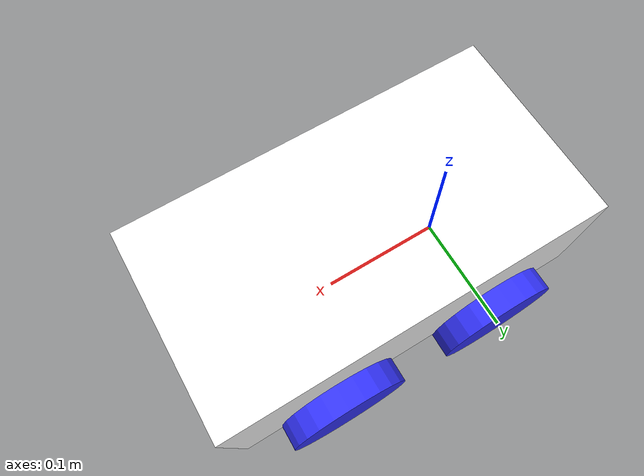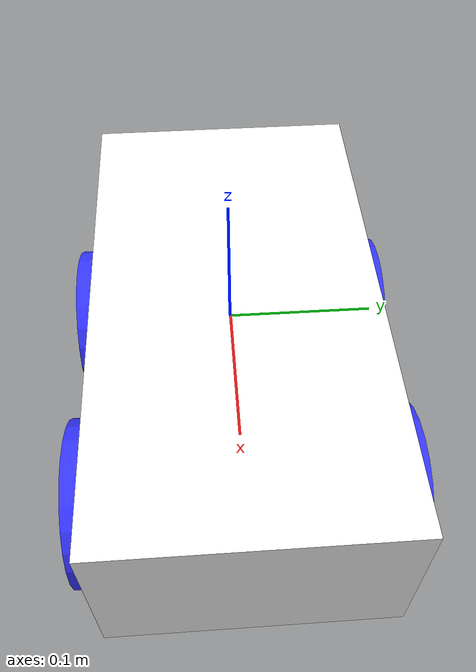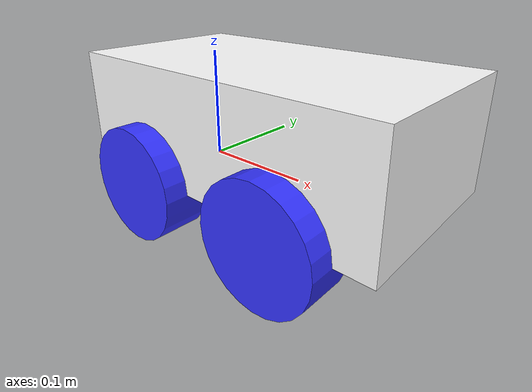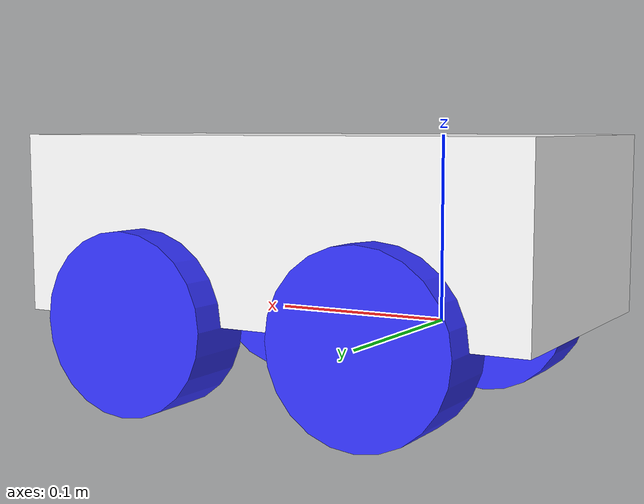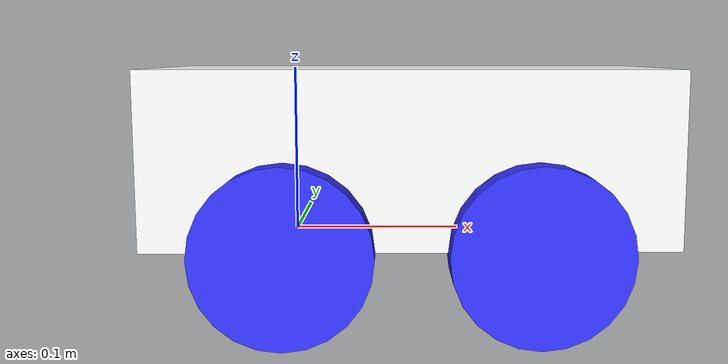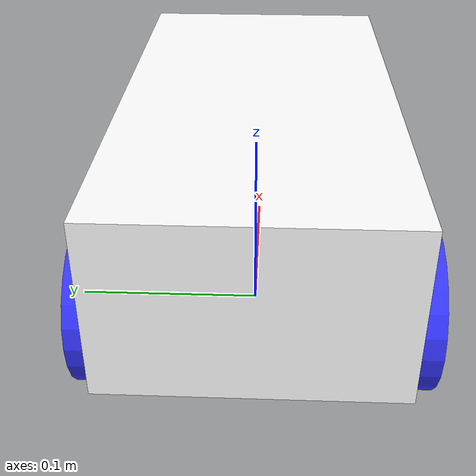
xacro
<?xml version="1.0"?>
<robot xmlns:xacro="http://www.ros.org/wiki/xacro" >

    <!-- inertial: quan tinh cua xe -->
    <xacro:include filename="inertial_macros.xacro"/>

    <xacro:property name="chassis_length" value="0.335"/>
    <xacro:property name="chassis_width" value="0.265"/>
    <xacro:property name="chassis_height" value="0.1"/>
    <xacro:property name="chassis_mass" value="1.0"/>
    <xacro:property name="wheel_radius" value="0.033"/>
    <xacro:property name="wheel_thickness" value="0.026"/>
    <xacro:property name="wheel_mass" value="0.05"/>
    <xacro:property name="wheel_offset_x" value="0.226"/>
    <xacro:property name="wheel_offset_y" value="0.1485"/>
    <xacro:property name="wheel_offset_z" value="0.01"/>
    <xacro:property name="caster_wheel_radius" value="0.01"/>
    <xacro:property name="caster_wheel_mass" value="0.01"/>
    <xacro:property name="caster_wheel_offset_x" value="0.075"/>
    <xacro:property name="caster_wheel_offset_z" value="${wheel_offset_z - wheel_radius + caster_wheel_radius}"/>

    <material name="white">
        <color rgba="1 1 1 1" />
    </material>

    <material name="orange">
        <color rgba="1 0.3 0.1 1"/>
    </material>

    <material name="blue">
        <color rgba="0.2 0.2 1 1"/>
    </material>

    <material name="black">
        <color rgba="0 0 0 1"/>
    </material>

    <material name="red">
        <color rgba="1 0 0 1"/>
    </material>

    <!-- BASE LINK -->

    <link name="base_link">

    </link>

    <!-- BASE_FOOTPRINT LINK -->

    <joint name="base_footprint_joint" type="fixed">
        <parent link="base_link"/>
        <child link="base_footprint"/>
        <origin xyz="0 0 0" rpy="0 0 0"/>
    </joint>

    <link name="base_footprint">
    </link>

    <!-- CHASSIS LINK -->

    <joint name="chassis_joint" type="fixed">
        <parent link="base_link"/>
        <child link="chassis"/>
        <origin xyz="-0.08 0 0"/>
    </joint>

    <link name="chassis">
        <visual>
            <origin xyz="0.15 0 0.05" rpy="0 0 0"/>
            <geometry>
                <box size="0.3 0.16 0.1"/>
            </geometry>
            <material name="white"/>
        </visual>
        <!-- giai quyet va cham -->
        <collision>
            <origin xyz="0.15 0 0.05" rpy="0 0 0"/>
            <geometry>
                <box size="0.3 0.16 0.1"/>
            </geometry>
        </collision>
        <!-- quan tinh cua khung -->
        <xacro:inertial_box mass="0.5" x="0.3" y="0.3" z="0.15">
            <origin xyz="0.1 0 0.075" rpy="0 0 0"/>
        </xacro:inertial_box>
    </link>

    <!-- FRONT LEFT WHEEL LINK -->

    <joint name="front_left_wheel_joint" type="continuous">
        <parent link="base_link"/>
        <child link="front_left_wheel"/>
        <origin xyz="0 0.08 0" rpy="-${pi/2} 0 0"/>
        <axis xyz="0 0 1"/>
    </joint>

    <link name="front_left_wheel">
        <visual>
            <geometry>
                <cylinder length="0.04" radius="0.05" />
            </geometry>
            <material name="blue"/>
        </visual>
        <!-- giai quyet va cham -->
        <collision>
            <geometry>
                <cylinder length="0.04" radius="0.05" />
            </geometry>
        </collision>
        <!-- quan tinh -->
        <xacro:inertial_cylinder mass="0.1" length="0.04" radius="0.05">
            <origin xyz="0 0 0" rpy="0 0 0"/>
        </xacro:inertial_cylinder>
    </link>

    <!-- REAR LEFT WHEEL LINK-->

    <joint name="rear_left_wheel_joint" type="continuous">
        <parent link="base_link"/>
        <child link="rear_left_wheel"/>
        <origin xyz="0.14 0.08 0" rpy="-${pi/2} 0 0"/>
        <axis xyz="0 0 1"/>
    </joint>

    <link name="rear_left_wheel">
        <visual>
            <geometry>
                <cylinder length="0.04" radius="0.05" />
            </geometry>
            <material name="blue"/>
        </visual>
        <!-- giai quyet va cham -->
        <collision>
            <geometry>
                <cylinder length="0.04" radius="0.05" />
            </geometry>
        </collision>
        <!-- quan tinh -->
        <xacro:inertial_cylinder mass="0.1" length="0.04" radius="0.05">
            <origin xyz="0 0 0" rpy="0 0 0"/>
        </xacro:inertial_cylinder>
    </link>

    <!-- FRONT RIGHT WHEEL LINK -->

    <joint name="front_right_wheel_joint" type="continuous">
        <parent link="base_link"/>
        <child link="front_right_wheel"/>
        <origin xyz="0 -0.08 0" rpy="${pi/2} 0 0"/>
        <axis xyz="0 0 -1"/>
    </joint>

    <link name="front_right_wheel">
        <visual>
            <geometry>
                <cylinder length="0.04" radius="0.05" />
            </geometry>
            <material name="blue"/>
        </visual>
        <!-- giai quyet va cham -->
        <collision>
            <geometry>
                <cylinder length="0.04" radius="0.05" />
            </geometry>
        </collision>
        <!-- quan tinh -->
        <xacro:inertial_cylinder mass="0.1" length="0.04" radius="0.05">
            <origin xyz="0 0 0" rpy="0 0 0"/>
        </xacro:inertial_cylinder>
    </link>

    <!-- REAR RIGHT WHEEL LINK -->

    <joint name="rear_right_wheel_joint" type="continuous">
        <parent link="base_link"/>
        <child link="rear_right_wheel"/>
        <origin xyz="0.14 -0.08 0" rpy="${pi/2} 0 0"/>
        <axis xyz="0 0 -1"/>
    </joint>

    <link name="rear_right_wheel">
        <visual>
            <geometry>
                <cylinder length="0.04" radius="0.05" />
            </geometry>
            <material name="blue"/>
        </visual>
        <!-- giai quyet va cham -->
        <collision>
            <geometry>
                <cylinder length="0.04" radius="0.05" />
            </geometry>
        </collision>
        <!-- quan tinh -->
        <xacro:inertial_cylinder mass="0.1" length="0.04" radius="0.05">
            <origin xyz="0 0 0" rpy="0 0 0"/>
        </xacro:inertial_cylinder>
    </link>

    <!-- CASTER WHEEL LINK -->

</robot>
